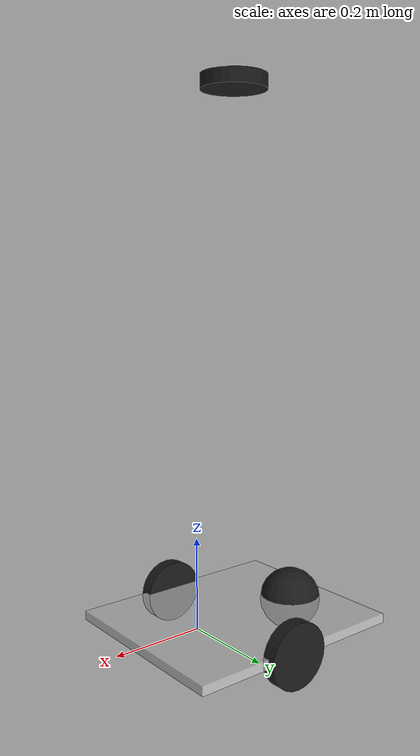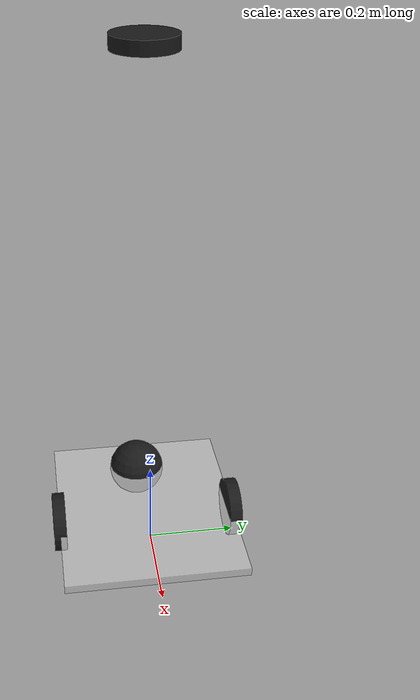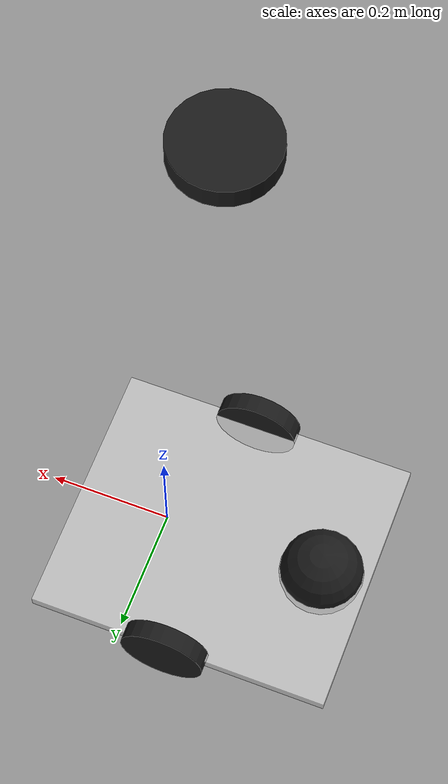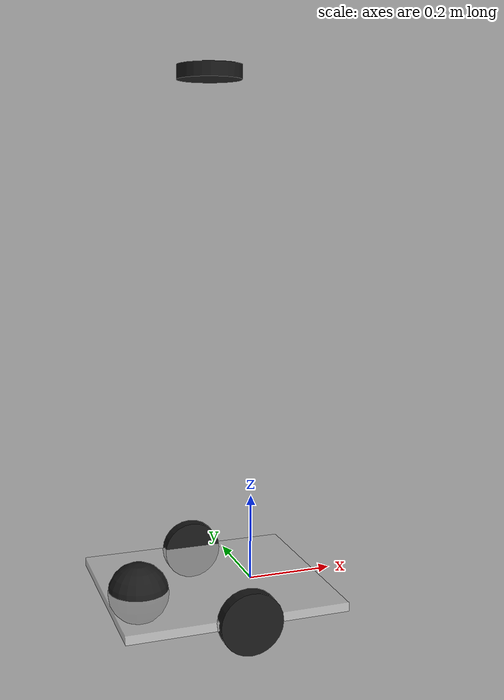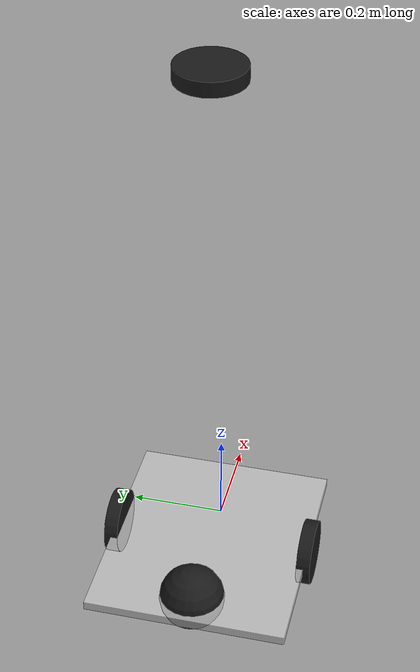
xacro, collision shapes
<?xml version="1.0"?>
<robot xmlns:xacro="http://www.ros.org/wiki/xacro" name="urdf_robot">

  <xacro:macro name="inertial_sphere" params="mass radius *origin">
    <inertial>
      <xacro:insert_block name="origin"/>
      <mass value="${mass}" />
      <inertia ixx="${(2/5) * mass * (radius*radius)}" ixy="0.0" ixz="0.0"
              iyy="${(2/5) * mass * (radius*radius)}" iyz="0.0"
              izz="${(2/5) * mass * (radius*radius)}" />
    </inertial>
  </xacro:macro>

  <xacro:macro name="inertial_box" params="mass x y z *origin">
    <inertial>
      <xacro:insert_block name="origin"/>
      <mass value="${mass}" />
      <inertia ixx="${(1/12) * mass * (y*y+z*z)}" ixy="0.0" ixz="0.0"
              iyy="${(1/12) * mass * (x*x+z*z)}" iyz="0.0"
              izz="${(1/12) * mass * (x*x+y*y)}" />
    </inertial>
  </xacro:macro>

  <xacro:macro name="inertial_cylinder" params="mass length radius *origin">
    <inertial>
      <xacro:insert_block name="origin"/>
      <mass value="${mass}" />
      <inertia ixx="${(1/12) * mass * (3*radius*radius + length*length)}" ixy="0.0" ixz="0.0"
              iyy="${(1/12) * mass * (3*radius*radius + length*length)}" iyz="0.0"
              izz="${(1/2) * mass * (radius*radius)}" />
    </inertial>
  </xacro:macro>

  <link name="base_footprint">

  </link>

  <material name="grey">
    <color rgba="0.8 0.8 0.8 0.8"/>
  </material>
  <material name="black">
    <color rgba="0.1 0.1 0.1 1"/>
  </material>

  <link name="base_link">
    <visual>
      <origin xyz="0.0 0.0 -1.15" rpy="-1.57 0.0 -1.57" />
      <geometry>
        <mesh
          filename="package://urdf_robot/meshes/TEST.STL" />
      </geometry>
      <material name="grey"/>
    </visual>
    <collision>
      <origin xyz="0.0 0.0 0.0"/>
      <geometry>
        <box size="0.5 0.43 0.02"/>
      </geometry>
    </collision>
    <xacro:inertial_box mass="20" x="0.5" y="0.43" z="0.02">
      <origin xyz="0.0 0.0 0.0" rpy="0.0 0.0 0.0"/>
    </xacro:inertial_box>
  </link>

  <joint name="base_joint" type="fixed">
    <parent link="base_footprint"/>
    <child link="base_link"/>
    <origin xyz="-0.1 0.0 0.0" rpy="0.0 0.0 0.0"/>
  </joint>

  <!--front right wheel-->
  <link name="wheel_frontr_link">
    <visual>
      <origin xyz="0.0 0.0 0.0" rpy="0.0 0.0 0.0"/>
      <geometry>
        <cylinder radius="0.07" length="0.03"/>
      </geometry>
      <material name="black"/>
    </visual>
    <collision>
      <geometry>
        <cylinder radius="0.07" length="0.03"/>
      </geometry>
    </collision>
    <xacro:inertial_cylinder mass="0.2" length="0.03" radius="0.07">
      <origin xyz="0.0 0.0 0.0" rpy="0.0 0.0 0.0"/>
    </xacro:inertial_cylinder>
  </link>

  <joint name="joint_frontr_wheel" type="continuous">
    <parent link="base_link"/>
    <child link="wheel_frontr_link"/>
    <axis xyz="0 0 1"/>
    <!--limit lower="-3.14159" upper="3.14159" velocity="50.0" effort="1000.0"/-->
    <origin xyz="0.02 0.215 0" rpy="-1.57 0 0"/>
  </joint>

  <!--front left wheel-->

  <link name="wheel_frontl_link">
    <visual>
      <origin xyz="0.0 0.0 0.0" rpy="0.0 0.0 0.0"/>
      <geometry>
        <cylinder radius="0.07" length="0.03"/>
      </geometry>
      <material name="black"/>
    </visual>
    <collision>
      <geometry>
        <cylinder radius="0.07" length="0.03"/>
      </geometry>
    </collision>
    <xacro:inertial_cylinder mass="0.2" length="0.03" radius="0.07">
      <origin xyz="0.0 0.0 0.0" rpy="0.0 0.0 0.0"/>
    </xacro:inertial_cylinder>
  </link>

  <joint name="joint_frontl" type="continuous">
    <parent link="base_link"/>
    <child link="wheel_frontl_link"/>
    <axis xyz="0 0 1"/>
    <!--limit lower="-3.14159" upper="3.14159" velocity="50.0" effort="1000.0"/-->
    <origin xyz="0.02 -0.215 0" rpy="-1.57 0 0"/>
  </joint>

  <!--CASTER WHEEL-->

  <joint name="caster_wheel_joint" type="fixed">
    <parent link="base_link"/>
    <child link="caster_wheel"/>
    <origin xyz="-0.17 0.0 0.0"/>
  </joint>

  <link name="caster_wheel">
    <visual>
      <geometry>
        <sphere radius="0.07"/>
      </geometry>
      <material name="black"/>
    </visual>
    <collision>
      <geometry>
        <sphere radius="0.07"/>
      </geometry>
    </collision>
    <xacro:inertial_sphere mass="0.3" radius="0.07">
      <origin xyz="0.0 0.0 0.0" rpy="0.0 0.0 0.0"/>
    </xacro:inertial_sphere>
  </link>

  <!--LIDAR-->
  <joint name="lidar_joint" type="fixed">
    <parent link="base_link"/>
    <child link="laser_frame"/>
    <origin xyz="0.0 0.0 1.14" rpy="0.0 0.0 0.0"/>
  </joint>

  <link name="laser_frame">
    <visual>
      <origin xyz="0.0 0.0 0.0" rpy="0.0 0.0 0.0"/>
      <geometry>
        <mesh
          filename="package://urdf_robot/meshes/lidar_3d_v2.dae" />
      </geometry>
      <material name="black"/>
    </visual>
    <collision>
      <geometry>
        <cylinder radius="0.07" length="0.03"/>
      </geometry>
    </collision>
    <xacro:inertial_cylinder mass="0.2" length="0.03" radius="0.07">
      <origin xyz="0.0 0.0 0.0" rpy="0.0 0.0 0.0"/>
    </xacro:inertial_cylinder>
  </link>

  <!--IMU_SENSOR-->
  <link name="imu_link"></link>
  <joint name="imu_joint" type="fixed">
    <parent link="base_link"/>
    <child link="imu_link"/>
    <origin xyz="0.0 0.0 0.0" rpy="0.0 0.0 0.0"/>
  </joint>

  <gazebo reference="base_link">
    <material>Gazebo/Grey</material>
  </gazebo>
  <gazebo reference="wheel_frontr_link">
    <material>Gazebo/Black</material>
  </gazebo>
  <gazebo reference="wheel_frontl_link">
    <material>Gazebo/Black</material>
  </gazebo>
  <gazebo reference="laser_frame">
    <material>Gazebo/Black</material>
  </gazebo>
  <gazebo reference="caster_wheel">
    <material>Gazebo/Black</material>
    <mu1 value="0.001"/>
    <mu2 value="0.001"/>
  </gazebo>

  <gazebo>
    <plugin name="differential_drive_controller" filename="libgazebo_ros_diff_drive.so">

    <!-- Plugin update rate in Hz -->

    <!-- Name of left joint, defaults to `left_joint` -->
      <leftJoint>joint_frontl</leftJoint>

    <!-- Name of right joint, defaults to `right_joint` -->
      <rightJoint>joint_frontr_wheel</rightJoint>

    <!-- The distance from the center of one wheel to the other, in meters, defaults to 0.34 m -->
      <wheelSeparation>0.43</wheelSeparation>

    <!-- Diameter of the wheels, in meters, defaults to 0.15 m -->
      <wheelDiameter>0.14</wheelDiameter>

    <!-- Wheel acceleration, in rad/s^2, defaults to 0.0 rad/s^2 -->
      <wheelAcceleration>1.0</wheelAcceleration>

    <!-- Maximum torque which the wheels can produce, in Nm, defaults to 5 Nm -->
      <wheelTorque>28</wheelTorque>

    <!-- Topic to receive geometry_msgs/Twist message commands, defaults to `cmd_vel` -->
      <commandTopic>/cmd_vel</commandTopic>

    <!-- Topic to publish nav_msgs/Odometry messages, defaults to `odom` -->
      <odometryTopic>odom</odometryTopic>

    <!-- Odometry frame, defaults to `odom` -->
      <odometryFrame>odom</odometryFrame>

    <!-- Robot frame to calculate odometry from, defaults to `base_footprint` -->
      <robotBaseFrame>base_footprint</robotBaseFrame>

    <!-- Odometry source, 0 for ENCODER, 1 for WORLD, defaults to WORLD -->
      <odometrySource>1</odometrySource>

    <!-- Set to true to publish transforms for the wheel links, defaults to false -->
      <publishWheelTF>true</publishWheelTF>

    <!-- Set to true to publish transforms for the odometry, defaults to true -->
      <publishOdom>true</publishOdom>

    <!-- Set to true to publish sensor_msgs/JointState on /joint_states for the wheel joints, defaults to false -->
      <publishWheelJointState>true</publishWheelJointState>

    <!-- Set to true to swap right and left wheels, defaults to true -->
      <legacyMode>false</legacyMode>

    </plugin>
  </gazebo>

  <gazebo reference="laser_frame">
    <sensor type="ray" name="head_hokuyo_sensor">
      <pose>0 0 0 0 0 0</pose>
      <visualize>true</visualize>
      <update_rate>10</update_rate>
      <ray>
        <scan>
          <horizontal>
            <samples>360</samples>
            <resolution>1</resolution>
            <min_angle>-3.14</min_angle>
            <max_angle>3.14</max_angle>
          </horizontal>
        </scan>
        <range>
          <min>0.3</min>
          <max>12</max>
          <resolution>0.01</resolution>
        </range>
        <noise>
          <type>gaussian</type>
          <mean>0.0</mean>
          <stddev>0.01</stddev>
        </noise>
      </ray>
      <plugin name="gazebo_ros_head_hokuyo_controller" filename="libgazebo_ros_laser.so">
        <topicName>/scan</topicName>
        <frameName>laser_frame</frameName>
      </plugin>
    </sensor>
  </gazebo>

  <gazebo reference="imu_link">
    <gravity>true</gravity>
    <sensor name="imu_sensor" type="imu">
      <always_on>true</always_on>
      <update_rate>100</update_rate>
      <visualize>true</visualize>
      <topic>__default_topic__</topic>
      <plugin filename="libgazebo_ros_imu_sensor.so" name="imu_plugin">
        <topicName>imu</topicName>
        <bodyName>imu_link</bodyName>
        <updateRateHZ>10.0</updateRateHZ>
        <gaussianNoise>0.0</gaussianNoise>
        <xyzOffset>0 0 0</xyzOffset>
        <rpyOffset>0 0 0</rpyOffset>
        <frameName>imu_link</frameName>
        <initialOrientationAsReference>false</initialOrientationAsReference>
      </plugin>
      <pose>0 0 0 0 0 0</pose>
    </sensor>
  </gazebo>

</robot>
